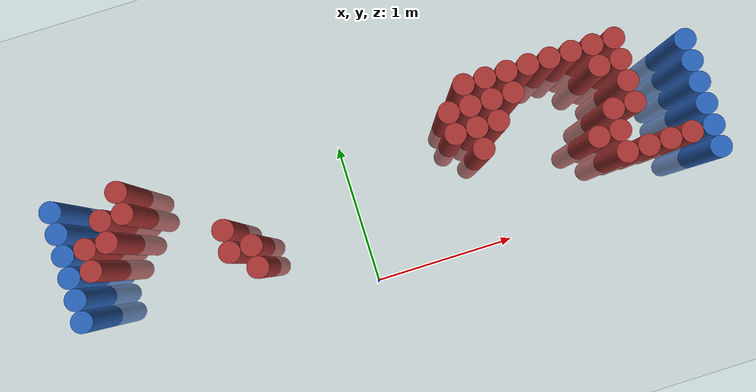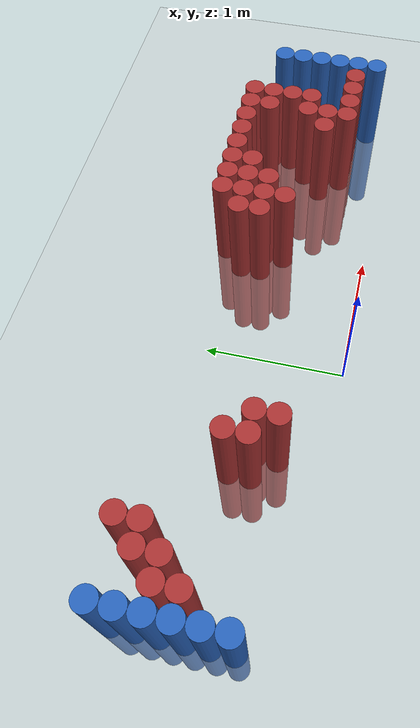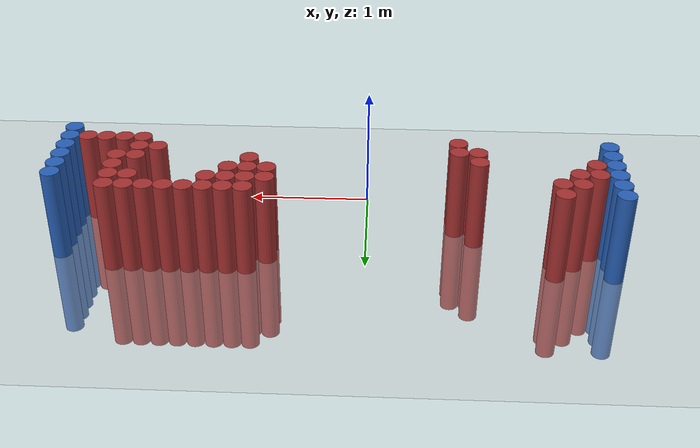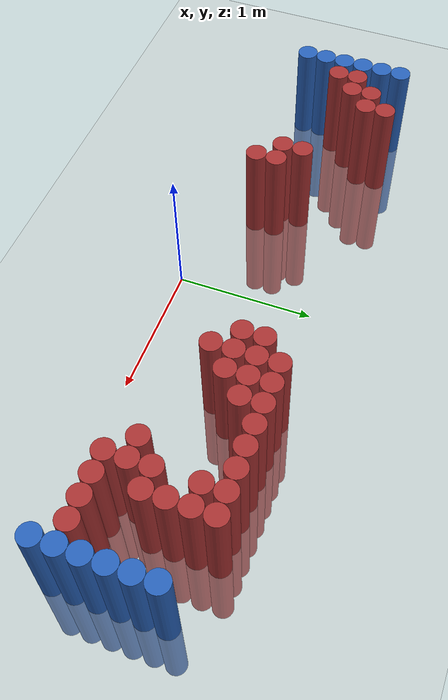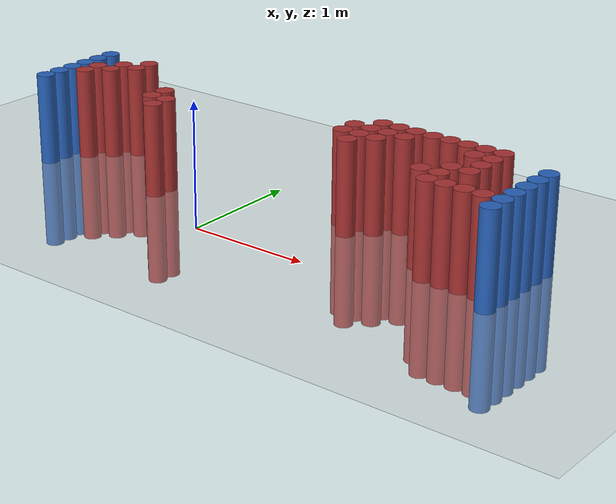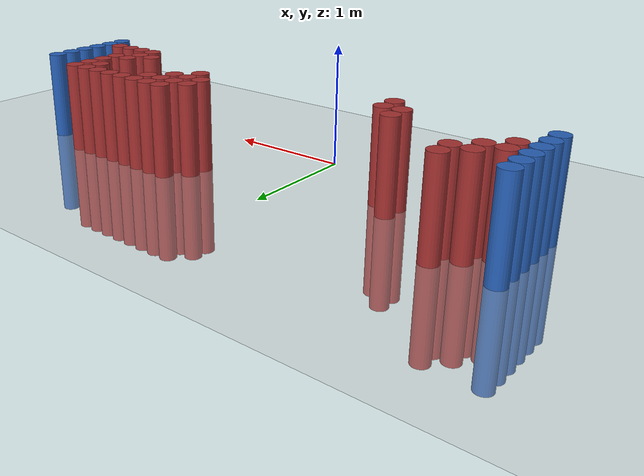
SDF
<sdf version="1.6">
 <world name="default">
  <model name="ground_plane">
   <static>1</static>
   <link name="link">
    <collision name="collision">
     <geometry><plane><normal>0 0 1</normal><size>100 100</size></plane></geometry>
     <surface><friction><ode><mu>100</mu><mu2>50</mu2></ode></friction></surface>
    </collision>
    <visual name="visual">
     <cast_shadows>0</cast_shadows>
     <geometry><plane><normal>0 0 1</normal><size>100 100</size></plane></geometry>
     <material>
      <script><uri>file://media/materials/scripts/gazebo.material</uri><name>Gazebo/Grey</name></script>
     </material>
    </visual>
   </link>
  </model>
  <model name="unit_cylinder_97">
   <static>1</static>
   <pose>-1.925000 0.325000 0.000000 0.000000 0.000000 0.000000</pose>
   <link name="link">
    <inertial>
     <mass>1</mass>
     <inertia><ixx>0.145833</ixx><ixy>0</ixy><ixz>0</ixz><iyy>0.145833</iyy><iyz>0</iyz><izz>0.125</izz></inertia>
    </inertial>
    <collision name="collision">
     <geometry><cylinder><radius>0.075000</radius><length>1.5</length></cylinder></geometry>
    </collision>
    <visual name="visual">
     <geometry><cylinder><radius>0.075000</radius><length>1.5</length></cylinder></geometry>
     <material>
      <ambient>0.152000 0.379000 0.720000 1</ambient>
      <diffuse>0.152000 0.379000 0.720000 1</diffuse>
     </material>
     <material>
      <script><name>Gazebo/Grey</name><uri>file://media/materials/scripts/gazebo.material</uri></script>
     </material>
    </visual>
   </link>
  </model>
  <model name="unit_cylinder_98">
   <static>1</static>
   <pose>-1.925000 0.475000 0.000000 0.000000 0.000000 0.000000</pose>
   <link name="link">
    <inertial>
     <mass>1</mass>
     <inertia><ixx>0.145833</ixx><ixy>0</ixy><ixz>0</ixz><iyy>0.145833</iyy><iyz>0</iyz><izz>0.125</izz></inertia>
    </inertial>
    <collision name="collision">
     <geometry><cylinder><radius>0.075000</radius><length>1.5</length></cylinder></geometry>
    </collision>
    <visual name="visual">
     <geometry><cylinder><radius>0.075000</radius><length>1.5</length></cylinder></geometry>
     <material>
      <ambient>0.152000 0.379000 0.720000 1</ambient>
      <diffuse>0.152000 0.379000 0.720000 1</diffuse>
     </material>
     <material>
      <script><name>Gazebo/Grey</name><uri>file://media/materials/scripts/gazebo.material</uri></script>
     </material>
    </visual>
   </link>
  </model>
  <model name="unit_cylinder_99">
   <static>1</static>
   <pose>-1.925000 0.625000 0.000000 0.000000 0.000000 0.000000</pose>
   <link name="link">
    <inertial>
     <mass>1</mass>
     <inertia><ixx>0.145833</ixx><ixy>0</ixy><ixz>0</ixz><iyy>0.145833</iyy><iyz>0</iyz><izz>0.125</izz></inertia>
    </inertial>
    <collision name="collision">
     <geometry><cylinder><radius>0.075000</radius><length>1.5</length></cylinder></geometry>
    </collision>
    <visual name="visual">
     <geometry><cylinder><radius>0.075000</radius><length>1.5</length></cylinder></geometry>
     <material>
      <ambient>0.152000 0.379000 0.720000 1</ambient>
      <diffuse>0.152000 0.379000 0.720000 1</diffuse>
     </material>
     <material>
      <script><name>Gazebo/Grey</name><uri>file://media/materials/scripts/gazebo.material</uri></script>
     </material>
    </visual>
   </link>
  </model>
  <model name="unit_cylinder_100">
   <static>1</static>
   <pose>-1.925000 0.775000 0.000000 0.000000 0.000000 0.000000</pose>
   <link name="link">
    <inertial>
     <mass>1</mass>
     <inertia><ixx>0.145833</ixx><ixy>0</ixy><ixz>0</ixz><iyy>0.145833</iyy><iyz>0</iyz><izz>0.125</izz></inertia>
    </inertial>
    <collision name="collision">
     <geometry><cylinder><radius>0.075000</radius><length>1.5</length></cylinder></geometry>
    </collision>
    <visual name="visual">
     <geometry><cylinder><radius>0.075000</radius><length>1.5</length></cylinder></geometry>
     <material>
      <ambient>0.152000 0.379000 0.720000 1</ambient>
      <diffuse>0.152000 0.379000 0.720000 1</diffuse>
     </material>
     <material>
      <script><name>Gazebo/Grey</name><uri>file://media/materials/scripts/gazebo.material</uri></script>
     </material>
    </visual>
   </link>
  </model>
  <model name="unit_cylinder_101">
   <static>1</static>
   <pose>-1.925000 0.925000 0.000000 0.000000 0.000000 0.000000</pose>
   <link name="link">
    <inertial>
     <mass>1</mass>
     <inertia><ixx>0.145833</ixx><ixy>0</ixy><ixz>0</ixz><iyy>0.145833</iyy><iyz>0</iyz><izz>0.125</izz></inertia>
    </inertial>
    <collision name="collision">
     <geometry><cylinder><radius>0.075000</radius><length>1.5</length></cylinder></geometry>
    </collision>
    <visual name="visual">
     <geometry><cylinder><radius>0.075000</radius><length>1.5</length></cylinder></geometry>
     <material>
      <ambient>0.152000 0.379000 0.720000 1</ambient>
      <diffuse>0.152000 0.379000 0.720000 1</diffuse>
     </material>
     <material>
      <script><name>Gazebo/Grey</name><uri>file://media/materials/scripts/gazebo.material</uri></script>
     </material>
    </visual>
   </link>
  </model>
  <model name="unit_cylinder_102">
   <static>1</static>
   <pose>-1.925000 1.075000 0.000000 0.000000 0.000000 0.000000</pose>
   <link name="link">
    <inertial>
     <mass>1</mass>
     <inertia><ixx>0.145833</ixx><ixy>0</ixy><ixz>0</ixz><iyy>0.145833</iyy><iyz>0</iyz><izz>0.125</izz></inertia>
    </inertial>
    <collision name="collision">
     <geometry><cylinder><radius>0.075000</radius><length>1.5</length></cylinder></geometry>
    </collision>
    <visual name="visual">
     <geometry><cylinder><radius>0.075000</radius><length>1.5</length></cylinder></geometry>
     <material>
      <ambient>0.152000 0.379000 0.720000 1</ambient>
      <diffuse>0.152000 0.379000 0.720000 1</diffuse>
     </material>
     <material>
      <script><name>Gazebo/Grey</name><uri>file://media/materials/scripts/gazebo.material</uri></script>
     </material>
    </visual>
   </link>
  </model>
  <model name="unit_cylinder_127">
   <static>1</static>
   <pose>-1.775000 0.625000 0.000000 0.000000 0.000000 0.000000</pose>
   <link name="link">
    <inertial>
     <mass>1</mass>
     <inertia><ixx>0.145833</ixx><ixy>0</ixy><ixz>0</ixz><iyy>0.145833</iyy><iyz>0</iyz><izz>0.125</izz></inertia>
    </inertial>
    <collision name="collision">
     <geometry><cylinder><radius>0.075000</radius><length>1.5</length></cylinder></geometry>
    </collision>
    <visual name="visual">
     <geometry><cylinder><radius>0.075000</radius><length>1.5</length></cylinder></geometry>
     <material>
      <ambient>0.648000 0.192000 0.192000 1</ambient>
      <diffuse>0.648000 0.192000 0.192000 1</diffuse>
     </material>
     <material>
      <script><name>Gazebo/Grey</name><uri>file://media/materials/scripts/gazebo.material</uri></script>
     </material>
    </visual>
   </link>
  </model>
  <model name="unit_cylinder_128">
   <static>1</static>
   <pose>-1.775000 0.775000 0.000000 0.000000 0.000000 0.000000</pose>
   <link name="link">
    <inertial>
     <mass>1</mass>
     <inertia><ixx>0.145833</ixx><ixy>0</ixy><ixz>0</ixz><iyy>0.145833</iyy><iyz>0</iyz><izz>0.125</izz></inertia>
    </inertial>
    <collision name="collision">
     <geometry><cylinder><radius>0.075000</radius><length>1.5</length></cylinder></geometry>
    </collision>
    <visual name="visual">
     <geometry><cylinder><radius>0.075000</radius><length>1.5</length></cylinder></geometry>
     <material>
      <ambient>0.648000 0.192000 0.192000 1</ambient>
      <diffuse>0.648000 0.192000 0.192000 1</diffuse>
     </material>
     <material>
      <script><name>Gazebo/Grey</name><uri>file://media/materials/scripts/gazebo.material</uri></script>
     </material>
    </visual>
   </link>
  </model>
  <model name="unit_cylinder_143">
   <static>1</static>
   <pose>-1.625000 0.775000 0.000000 0.000000 0.000000 0.000000</pose>
   <link name="link">
    <inertial>
     <mass>1</mass>
     <inertia><ixx>0.145833</ixx><ixy>0</ixy><ixz>0</ixz><iyy>0.145833</iyy><iyz>0</iyz><izz>0.125</izz></inertia>
    </inertial>
    <collision name="collision">
     <geometry><cylinder><radius>0.075000</radius><length>1.5</length></cylinder></geometry>
    </collision>
    <visual name="visual">
     <geometry><cylinder><radius>0.075000</radius><length>1.5</length></cylinder></geometry>
     <material>
      <ambient>0.648000 0.192000 0.192000 1</ambient>
      <diffuse>0.648000 0.192000 0.192000 1</diffuse>
     </material>
     <material>
      <script><name>Gazebo/Grey</name><uri>file://media/materials/scripts/gazebo.material</uri></script>
     </material>
    </visual>
   </link>
  </model>
  <model name="unit_cylinder_144">
   <static>1</static>
   <pose>-1.625000 0.925000 0.000000 0.000000 0.000000 0.000000</pose>
   <link name="link">
    <inertial>
     <mass>1</mass>
     <inertia><ixx>0.145833</ixx><ixy>0</ixy><ixz>0</ixz><iyy>0.145833</iyy><iyz>0</iyz><izz>0.125</izz></inertia>
    </inertial>
    <collision name="collision">
     <geometry><cylinder><radius>0.075000</radius><length>1.5</length></cylinder></geometry>
    </collision>
    <visual name="visual">
     <geometry><cylinder><radius>0.075000</radius><length>1.5</length></cylinder></geometry>
     <material>
      <ambient>0.648000 0.192000 0.192000 1</ambient>
      <diffuse>0.648000 0.192000 0.192000 1</diffuse>
     </material>
     <material>
      <script><name>Gazebo/Grey</name><uri>file://media/materials/scripts/gazebo.material</uri></script>
     </material>
    </visual>
   </link>
  </model>
  <model name="unit_cylinder_150">
   <static>1</static>
   <pose>-1.475000 0.925000 0.000000 0.000000 0.000000 0.000000</pose>
   <link name="link">
    <inertial>
     <mass>1</mass>
     <inertia><ixx>0.145833</ixx><ixy>0</ixy><ixz>0</ixz><iyy>0.145833</iyy><iyz>0</iyz><izz>0.125</izz></inertia>
    </inertial>
    <collision name="collision">
     <geometry><cylinder><radius>0.075000</radius><length>1.5</length></cylinder></geometry>
    </collision>
    <visual name="visual">
     <geometry><cylinder><radius>0.075000</radius><length>1.5</length></cylinder></geometry>
     <material>
      <ambient>0.648000 0.192000 0.192000 1</ambient>
      <diffuse>0.648000 0.192000 0.192000 1</diffuse>
     </material>
     <material>
      <script><name>Gazebo/Grey</name><uri>file://media/materials/scripts/gazebo.material</uri></script>
     </material>
    </visual>
   </link>
  </model>
  <model name="unit_cylinder_151">
   <static>1</static>
   <pose>-1.475000 1.075000 0.000000 0.000000 0.000000 0.000000</pose>
   <link name="link">
    <inertial>
     <mass>1</mass>
     <inertia><ixx>0.145833</ixx><ixy>0</ixy><ixz>0</ixz><iyy>0.145833</iyy><iyz>0</iyz><izz>0.125</izz></inertia>
    </inertial>
    <collision name="collision">
     <geometry><cylinder><radius>0.075000</radius><length>1.5</length></cylinder></geometry>
    </collision>
    <visual name="visual">
     <geometry><cylinder><radius>0.075000</radius><length>1.5</length></cylinder></geometry>
     <material>
      <ambient>0.648000 0.192000 0.192000 1</ambient>
      <diffuse>0.648000 0.192000 0.192000 1</diffuse>
     </material>
     <material>
      <script><name>Gazebo/Grey</name><uri>file://media/materials/scripts/gazebo.material</uri></script>
     </material>
    </visual>
   </link>
  </model>
  <model name="unit_cylinder_168">
   <static>1</static>
   <pose>-0.875000 0.475000 0.000000 0.000000 0.000000 0.000000</pose>
   <link name="link">
    <inertial>
     <mass>1</mass>
     <inertia><ixx>0.145833</ixx><ixy>0</ixy><ixz>0</ixz><iyy>0.145833</iyy><iyz>0</iyz><izz>0.125</izz></inertia>
    </inertial>
    <collision name="collision">
     <geometry><cylinder><radius>0.075000</radius><length>1.5</length></cylinder></geometry>
    </collision>
    <visual name="visual">
     <geometry><cylinder><radius>0.075000</radius><length>1.5</length></cylinder></geometry>
     <material>
      <ambient>0.648000 0.192000 0.192000 1</ambient>
      <diffuse>0.648000 0.192000 0.192000 1</diffuse>
     </material>
     <material>
      <script><name>Gazebo/Grey</name><uri>file://media/materials/scripts/gazebo.material</uri></script>
     </material>
    </visual>
   </link>
  </model>
  <model name="unit_cylinder_169">
   <static>1</static>
   <pose>-0.875000 0.625000 0.000000 0.000000 0.000000 0.000000</pose>
   <link name="link">
    <inertial>
     <mass>1</mass>
     <inertia><ixx>0.145833</ixx><ixy>0</ixy><ixz>0</ixz><iyy>0.145833</iyy><iyz>0</iyz><izz>0.125</izz></inertia>
    </inertial>
    <collision name="collision">
     <geometry><cylinder><radius>0.075000</radius><length>1.5</length></cylinder></geometry>
    </collision>
    <visual name="visual">
     <geometry><cylinder><radius>0.075000</radius><length>1.5</length></cylinder></geometry>
     <material>
      <ambient>0.648000 0.192000 0.192000 1</ambient>
      <diffuse>0.648000 0.192000 0.192000 1</diffuse>
     </material>
     <material>
      <script><name>Gazebo/Grey</name><uri>file://media/materials/scripts/gazebo.material</uri></script>
     </material>
    </visual>
   </link>
  </model>
  <model name="unit_cylinder_171">
   <static>1</static>
   <pose>-0.725000 0.325000 0.000000 0.000000 0.000000 0.000000</pose>
   <link name="link">
    <inertial>
     <mass>1</mass>
     <inertia><ixx>0.145833</ixx><ixy>0</ixy><ixz>0</ixz><iyy>0.145833</iyy><iyz>0</iyz><izz>0.125</izz></inertia>
    </inertial>
    <collision name="collision">
     <geometry><cylinder><radius>0.075000</radius><length>1.5</length></cylinder></geometry>
    </collision>
    <visual name="visual">
     <geometry><cylinder><radius>0.075000</radius><length>1.5</length></cylinder></geometry>
     <material>
      <ambient>0.648000 0.192000 0.192000 1</ambient>
      <diffuse>0.648000 0.192000 0.192000 1</diffuse>
     </material>
     <material>
      <script><name>Gazebo/Grey</name><uri>file://media/materials/scripts/gazebo.material</uri></script>
     </material>
    </visual>
   </link>
  </model>
  <model name="unit_cylinder_172">
   <static>1</static>
   <pose>-0.725000 0.475000 0.000000 0.000000 0.000000 0.000000</pose>
   <link name="link">
    <inertial>
     <mass>1</mass>
     <inertia><ixx>0.145833</ixx><ixy>0</ixy><ixz>0</ixz><iyy>0.145833</iyy><iyz>0</iyz><izz>0.125</izz></inertia>
    </inertial>
    <collision name="collision">
     <geometry><cylinder><radius>0.075000</radius><length>1.5</length></cylinder></geometry>
    </collision>
    <visual name="visual">
     <geometry><cylinder><radius>0.075000</radius><length>1.5</length></cylinder></geometry>
     <material>
      <ambient>0.648000 0.192000 0.192000 1</ambient>
      <diffuse>0.648000 0.192000 0.192000 1</diffuse>
     </material>
     <material>
      <script><name>Gazebo/Grey</name><uri>file://media/materials/scripts/gazebo.material</uri></script>
     </material>
    </visual>
   </link>
  </model>
  <model name="unit_cylinder_178">
   <static>1</static>
   <pose>0.775000 0.775000 0.000000 0.000000 0.000000 0.000000</pose>
   <link name="link">
    <inertial>
     <mass>1</mass>
     <inertia><ixx>0.145833</ixx><ixy>0</ixy><ixz>0</ixz><iyy>0.145833</iyy><iyz>0</iyz><izz>0.125</izz></inertia>
    </inertial>
    <collision name="collision">
     <geometry><cylinder><radius>0.075000</radius><length>1.5</length></cylinder></geometry>
    </collision>
    <visual name="visual">
     <geometry><cylinder><radius>0.075000</radius><length>1.5</length></cylinder></geometry>
     <material>
      <ambient>0.648000 0.192000 0.192000 1</ambient>
      <diffuse>0.648000 0.192000 0.192000 1</diffuse>
     </material>
     <material>
      <script><name>Gazebo/Grey</name><uri>file://media/materials/scripts/gazebo.material</uri></script>
     </material>
    </visual>
   </link>
  </model>
  <model name="unit_cylinder_179">
   <static>1</static>
   <pose>0.775000 0.925000 0.000000 0.000000 0.000000 0.000000</pose>
   <link name="link">
    <inertial>
     <mass>1</mass>
     <inertia><ixx>0.145833</ixx><ixy>0</ixy><ixz>0</ixz><iyy>0.145833</iyy><iyz>0</iyz><izz>0.125</izz></inertia>
    </inertial>
    <collision name="collision">
     <geometry><cylinder><radius>0.075000</radius><length>1.5</length></cylinder></geometry>
    </collision>
    <visual name="visual">
     <geometry><cylinder><radius>0.075000</radius><length>1.5</length></cylinder></geometry>
     <material>
      <ambient>0.648000 0.192000 0.192000 1</ambient>
      <diffuse>0.648000 0.192000 0.192000 1</diffuse>
     </material>
     <material>
      <script><name>Gazebo/Grey</name><uri>file://media/materials/scripts/gazebo.material</uri></script>
     </material>
    </visual>
   </link>
  </model>
  <model name="unit_cylinder_183">
   <static>1</static>
   <pose>0.925000 0.625000 0.000000 0.000000 0.000000 0.000000</pose>
   <link name="link">
    <inertial>
     <mass>1</mass>
     <inertia><ixx>0.145833</ixx><ixy>0</ixy><ixz>0</ixz><iyy>0.145833</iyy><iyz>0</iyz><izz>0.125</izz></inertia>
    </inertial>
    <collision name="collision">
     <geometry><cylinder><radius>0.075000</radius><length>1.5</length></cylinder></geometry>
    </collision>
    <visual name="visual">
     <geometry><cylinder><radius>0.075000</radius><length>1.5</length></cylinder></geometry>
     <material>
      <ambient>0.648000 0.192000 0.192000 1</ambient>
      <diffuse>0.648000 0.192000 0.192000 1</diffuse>
     </material>
     <material>
      <script><name>Gazebo/Grey</name><uri>file://media/materials/scripts/gazebo.material</uri></script>
     </material>
    </visual>
   </link>
  </model>
  <model name="unit_cylinder_184">
   <static>1</static>
   <pose>0.925000 0.775000 0.000000 0.000000 0.000000 0.000000</pose>
   <link name="link">
    <inertial>
     <mass>1</mass>
     <inertia><ixx>0.145833</ixx><ixy>0</ixy><ixz>0</ixz><iyy>0.145833</iyy><iyz>0</iyz><izz>0.125</izz></inertia>
    </inertial>
    <collision name="collision">
     <geometry><cylinder><radius>0.075000</radius><length>1.5</length></cylinder></geometry>
    </collision>
    <visual name="visual">
     <geometry><cylinder><radius>0.075000</radius><length>1.5</length></cylinder></geometry>
     <material>
      <ambient>0.648000 0.192000 0.192000 1</ambient>
      <diffuse>0.648000 0.192000 0.192000 1</diffuse>
     </material>
     <material>
      <script><name>Gazebo/Grey</name><uri>file://media/materials/scripts/gazebo.material</uri></script>
     </material>
    </visual>
   </link>
  </model>
  <model name="unit_cylinder_185">
   <static>1</static>
   <pose>0.925000 0.925000 0.000000 0.000000 0.000000 0.000000</pose>
   <link name="link">
    <inertial>
     <mass>1</mass>
     <inertia><ixx>0.145833</ixx><ixy>0</ixy><ixz>0</ixz><iyy>0.145833</iyy><iyz>0</iyz><izz>0.125</izz></inertia>
    </inertial>
    <collision name="collision">
     <geometry><cylinder><radius>0.075000</radius><length>1.5</length></cylinder></geometry>
    </collision>
    <visual name="visual">
     <geometry><cylinder><radius>0.075000</radius><length>1.5</length></cylinder></geometry>
     <material>
      <ambient>0.648000 0.192000 0.192000 1</ambient>
      <diffuse>0.648000 0.192000 0.192000 1</diffuse>
     </material>
     <material>
      <script><name>Gazebo/Grey</name><uri>file://media/materials/scripts/gazebo.material</uri></script>
     </material>
    </visual>
   </link>
  </model>
  <model name="unit_cylinder_186">
   <static>1</static>
   <pose>0.925000 1.075000 0.000000 0.000000 0.000000 0.000000</pose>
   <link name="link">
    <inertial>
     <mass>1</mass>
     <inertia><ixx>0.145833</ixx><ixy>0</ixy><ixz>0</ixz><iyy>0.145833</iyy><iyz>0</iyz><izz>0.125</izz></inertia>
    </inertial>
    <collision name="collision">
     <geometry><cylinder><radius>0.075000</radius><length>1.5</length></cylinder></geometry>
    </collision>
    <visual name="visual">
     <geometry><cylinder><radius>0.075000</radius><length>1.5</length></cylinder></geometry>
     <material>
      <ambient>0.648000 0.192000 0.192000 1</ambient>
      <diffuse>0.648000 0.192000 0.192000 1</diffuse>
     </material>
     <material>
      <script><name>Gazebo/Grey</name><uri>file://media/materials/scripts/gazebo.material</uri></script>
     </material>
    </visual>
   </link>
  </model>
  <model name="unit_cylinder_191">
   <static>1</static>
   <pose>1.075000 0.775000 0.000000 0.000000 0.000000 0.000000</pose>
   <link name="link">
    <inertial>
     <mass>1</mass>
     <inertia><ixx>0.145833</ixx><ixy>0</ixy><ixz>0</ixz><iyy>0.145833</iyy><iyz>0</iyz><izz>0.125</izz></inertia>
    </inertial>
    <collision name="collision">
     <geometry><cylinder><radius>0.075000</radius><length>1.5</length></cylinder></geometry>
    </collision>
    <visual name="visual">
     <geometry><cylinder><radius>0.075000</radius><length>1.5</length></cylinder></geometry>
     <material>
      <ambient>0.648000 0.192000 0.192000 1</ambient>
      <diffuse>0.648000 0.192000 0.192000 1</diffuse>
     </material>
     <material>
      <script><name>Gazebo/Grey</name><uri>file://media/materials/scripts/gazebo.material</uri></script>
     </material>
    </visual>
   </link>
  </model>
  <model name="unit_cylinder_192">
   <static>1</static>
   <pose>1.075000 0.925000 0.000000 0.000000 0.000000 0.000000</pose>
   <link name="link">
    <inertial>
     <mass>1</mass>
     <inertia><ixx>0.145833</ixx><ixy>0</ixy><ixz>0</ixz><iyy>0.145833</iyy><iyz>0</iyz><izz>0.125</izz></inertia>
    </inertial>
    <collision name="collision">
     <geometry><cylinder><radius>0.075000</radius><length>1.5</length></cylinder></geometry>
    </collision>
    <visual name="visual">
     <geometry><cylinder><radius>0.075000</radius><length>1.5</length></cylinder></geometry>
     <material>
      <ambient>0.648000 0.192000 0.192000 1</ambient>
      <diffuse>0.648000 0.192000 0.192000 1</diffuse>
     </material>
     <material>
      <script><name>Gazebo/Grey</name><uri>file://media/materials/scripts/gazebo.material</uri></script>
     </material>
    </visual>
   </link>
  </model>
  <model name="unit_cylinder_193">
   <static>1</static>
   <pose>1.075000 1.075000 0.000000 0.000000 0.000000 0.000000</pose>
   <link name="link">
    <inertial>
     <mass>1</mass>
     <inertia><ixx>0.145833</ixx><ixy>0</ixy><ixz>0</ixz><iyy>0.145833</iyy><iyz>0</iyz><izz>0.125</izz></inertia>
    </inertial>
    <collision name="collision">
     <geometry><cylinder><radius>0.075000</radius><length>1.5</length></cylinder></geometry>
    </collision>
    <visual name="visual">
     <geometry><cylinder><radius>0.075000</radius><length>1.5</length></cylinder></geometry>
     <material>
      <ambient>0.648000 0.192000 0.192000 1</ambient>
      <diffuse>0.648000 0.192000 0.192000 1</diffuse>
     </material>
     <material>
      <script><name>Gazebo/Grey</name><uri>file://media/materials/scripts/gazebo.material</uri></script>
     </material>
    </visual>
   </link>
  </model>
  <model name="unit_cylinder_199">
   <static>1</static>
   <pose>1.225000 0.925000 0.000000 0.000000 0.000000 0.000000</pose>
   <link name="link">
    <inertial>
     <mass>1</mass>
     <inertia><ixx>0.145833</ixx><ixy>0</ixy><ixz>0</ixz><iyy>0.145833</iyy><iyz>0</iyz><izz>0.125</izz></inertia>
    </inertial>
    <collision name="collision">
     <geometry><cylinder><radius>0.075000</radius><length>1.5</length></cylinder></geometry>
    </collision>
    <visual name="visual">
     <geometry><cylinder><radius>0.075000</radius><length>1.5</length></cylinder></geometry>
     <material>
      <ambient>0.648000 0.192000 0.192000 1</ambient>
      <diffuse>0.648000 0.192000 0.192000 1</diffuse>
     </material>
     <material>
      <script><name>Gazebo/Grey</name><uri>file://media/materials/scripts/gazebo.material</uri></script>
     </material>
    </visual>
   </link>
  </model>
  <model name="unit_cylinder_200">
   <static>1</static>
   <pose>1.225000 1.075000 0.000000 0.000000 0.000000 0.000000</pose>
   <link name="link">
    <inertial>
     <mass>1</mass>
     <inertia><ixx>0.145833</ixx><ixy>0</ixy><ixz>0</ixz><iyy>0.145833</iyy><iyz>0</iyz><izz>0.125</izz></inertia>
    </inertial>
    <collision name="collision">
     <geometry><cylinder><radius>0.075000</radius><length>1.5</length></cylinder></geometry>
    </collision>
    <visual name="visual">
     <geometry><cylinder><radius>0.075000</radius><length>1.5</length></cylinder></geometry>
     <material>
      <ambient>0.648000 0.192000 0.192000 1</ambient>
      <diffuse>0.648000 0.192000 0.192000 1</diffuse>
     </material>
     <material>
      <script><name>Gazebo/Grey</name><uri>file://media/materials/scripts/gazebo.material</uri></script>
     </material>
    </visual>
   </link>
  </model>
  <model name="unit_cylinder_205">
   <static>1</static>
   <pose>1.375000 1.075000 0.000000 0.000000 0.000000 0.000000</pose>
   <link name="link">
    <inertial>
     <mass>1</mass>
     <inertia><ixx>0.145833</ixx><ixy>0</ixy><ixz>0</ixz><iyy>0.145833</iyy><iyz>0</iyz><izz>0.125</izz></inertia>
    </inertial>
    <collision name="collision">
     <geometry><cylinder><radius>0.075000</radius><length>1.5</length></cylinder></geometry>
    </collision>
    <visual name="visual">
     <geometry><cylinder><radius>0.075000</radius><length>1.5</length></cylinder></geometry>
     <material>
      <ambient>0.648000 0.192000 0.192000 1</ambient>
      <diffuse>0.648000 0.192000 0.192000 1</diffuse>
     </material>
     <material>
      <script><name>Gazebo/Grey</name><uri>file://media/materials/scripts/gazebo.material</uri></script>
     </material>
    </visual>
   </link>
  </model>
  <model name="unit_cylinder_209">
   <static>1</static>
   <pose>1.525000 1.075000 0.000000 0.000000 0.000000 0.000000</pose>
   <link name="link">
    <inertial>
     <mass>1</mass>
     <inertia><ixx>0.145833</ixx><ixy>0</ixy><ixz>0</ixz><iyy>0.145833</iyy><iyz>0</iyz><izz>0.125</izz></inertia>
    </inertial>
    <collision name="collision">
     <geometry><cylinder><radius>0.075000</radius><length>1.5</length></cylinder></geometry>
    </collision>
    <visual name="visual">
     <geometry><cylinder><radius>0.075000</radius><length>1.5</length></cylinder></geometry>
     <material>
      <ambient>0.648000 0.192000 0.192000 1</ambient>
      <diffuse>0.648000 0.192000 0.192000 1</diffuse>
     </material>
     <material>
      <script><name>Gazebo/Grey</name><uri>file://media/materials/scripts/gazebo.material</uri></script>
     </material>
    </visual>
   </link>
  </model>
  <model name="unit_cylinder_216">
   <static>1</static>
   <pose>1.675000 0.475000 0.000000 0.000000 0.000000 0.000000</pose>
   <link name="link">
    <inertial>
     <mass>1</mass>
     <inertia><ixx>0.145833</ixx><ixy>0</ixy><ixz>0</ixz><iyy>0.145833</iyy><iyz>0</iyz><izz>0.125</izz></inertia>
    </inertial>
    <collision name="collision">
     <geometry><cylinder><radius>0.075000</radius><length>1.5</length></cylinder></geometry>
    </collision>
    <visual name="visual">
     <geometry><cylinder><radius>0.075000</radius><length>1.5</length></cylinder></geometry>
     <material>
      <ambient>0.648000 0.192000 0.192000 1</ambient>
      <diffuse>0.648000 0.192000 0.192000 1</diffuse>
     </material>
     <material>
      <script><name>Gazebo/Grey</name><uri>file://media/materials/scripts/gazebo.material</uri></script>
     </material>
    </visual>
   </link>
  </model>
  <model name="unit_cylinder_217">
   <static>1</static>
   <pose>1.675000 1.075000 0.000000 0.000000 0.000000 0.000000</pose>
   <link name="link">
    <inertial>
     <mass>1</mass>
     <inertia><ixx>0.145833</ixx><ixy>0</ixy><ixz>0</ixz><iyy>0.145833</iyy><iyz>0</iyz><izz>0.125</izz></inertia>
    </inertial>
    <collision name="collision">
     <geometry><cylinder><radius>0.075000</radius><length>1.5</length></cylinder></geometry>
    </collision>
    <visual name="visual">
     <geometry><cylinder><radius>0.075000</radius><length>1.5</length></cylinder></geometry>
     <material>
      <ambient>0.648000 0.192000 0.192000 1</ambient>
      <diffuse>0.648000 0.192000 0.192000 1</diffuse>
     </material>
     <material>
      <script><name>Gazebo/Grey</name><uri>file://media/materials/scripts/gazebo.material</uri></script>
     </material>
    </visual>
   </link>
  </model>
  <model name="unit_cylinder_225">
   <static>1</static>
   <pose>1.825000 0.325000 0.000000 0.000000 0.000000 0.000000</pose>
   <link name="link">
    <inertial>
     <mass>1</mass>
     <inertia><ixx>0.145833</ixx><ixy>0</ixy><ixz>0</ixz><iyy>0.145833</iyy><iyz>0</iyz><izz>0.125</izz></inertia>
    </inertial>
    <collision name="collision">
     <geometry><cylinder><radius>0.075000</radius><length>1.5</length></cylinder></geometry>
    </collision>
    <visual name="visual">
     <geometry><cylinder><radius>0.075000</radius><length>1.5</length></cylinder></geometry>
     <material>
      <ambient>0.648000 0.192000 0.192000 1</ambient>
      <diffuse>0.648000 0.192000 0.192000 1</diffuse>
     </material>
     <material>
      <script><name>Gazebo/Grey</name><uri>file://media/materials/scripts/gazebo.material</uri></script>
     </material>
    </visual>
   </link>
  </model>
  <model name="unit_cylinder_226">
   <static>1</static>
   <pose>1.825000 0.475000 0.000000 0.000000 0.000000 0.000000</pose>
   <link name="link">
    <inertial>
     <mass>1</mass>
     <inertia><ixx>0.145833</ixx><ixy>0</ixy><ixz>0</ixz><iyy>0.145833</iyy><iyz>0</iyz><izz>0.125</izz></inertia>
    </inertial>
    <collision name="collision">
     <geometry><cylinder><radius>0.075000</radius><length>1.5</length></cylinder></geometry>
    </collision>
    <visual name="visual">
     <geometry><cylinder><radius>0.075000</radius><length>1.5</length></cylinder></geometry>
     <material>
      <ambient>0.648000 0.192000 0.192000 1</ambient>
      <diffuse>0.648000 0.192000 0.192000 1</diffuse>
     </material>
     <material>
      <script><name>Gazebo/Grey</name><uri>file://media/materials/scripts/gazebo.material</uri></script>
     </material>
    </visual>
   </link>
  </model>
  <model name="unit_cylinder_227">
   <static>1</static>
   <pose>1.825000 0.625000 0.000000 0.000000 0.000000 0.000000</pose>
   <link name="link">
    <inertial>
     <mass>1</mass>
     <inertia><ixx>0.145833</ixx><ixy>0</ixy><ixz>0</ixz><iyy>0.145833</iyy><iyz>0</iyz><izz>0.125</izz></inertia>
    </inertial>
    <collision name="collision">
     <geometry><cylinder><radius>0.075000</radius><length>1.5</length></cylinder></geometry>
    </collision>
    <visual name="visual">
     <geometry><cylinder><radius>0.075000</radius><length>1.5</length></cylinder></geometry>
     <material>
      <ambient>0.648000 0.192000 0.192000 1</ambient>
      <diffuse>0.648000 0.192000 0.192000 1</diffuse>
     </material>
     <material>
      <script><name>Gazebo/Grey</name><uri>file://media/materials/scripts/gazebo.material</uri></script>
     </material>
    </visual>
   </link>
  </model>
  <model name="unit_cylinder_228">
   <static>1</static>
   <pose>1.825000 0.925000 0.000000 0.000000 0.000000 0.000000</pose>
   <link name="link">
    <inertial>
     <mass>1</mass>
     <inertia><ixx>0.145833</ixx><ixy>0</ixy><ixz>0</ixz><iyy>0.145833</iyy><iyz>0</iyz><izz>0.125</izz></inertia>
    </inertial>
    <collision name="collision">
     <geometry><cylinder><radius>0.075000</radius><length>1.5</length></cylinder></geometry>
    </collision>
    <visual name="visual">
     <geometry><cylinder><radius>0.075000</radius><length>1.5</length></cylinder></geometry>
     <material>
      <ambient>0.648000 0.192000 0.192000 1</ambient>
      <diffuse>0.648000 0.192000 0.192000 1</diffuse>
     </material>
     <material>
      <script><name>Gazebo/Grey</name><uri>file://media/materials/scripts/gazebo.material</uri></script>
     </material>
    </visual>
   </link>
  </model>
  <model name="unit_cylinder_229">
   <static>1</static>
   <pose>1.825000 1.075000 0.000000 0.000000 0.000000 0.000000</pose>
   <link name="link">
    <inertial>
     <mass>1</mass>
     <inertia><ixx>0.145833</ixx><ixy>0</ixy><ixz>0</ixz><iyy>0.145833</iyy><iyz>0</iyz><izz>0.125</izz></inertia>
    </inertial>
    <collision name="collision">
     <geometry><cylinder><radius>0.075000</radius><length>1.5</length></cylinder></geometry>
    </collision>
    <visual name="visual">
     <geometry><cylinder><radius>0.075000</radius><length>1.5</length></cylinder></geometry>
     <material>
      <ambient>0.648000 0.192000 0.192000 1</ambient>
      <diffuse>0.648000 0.192000 0.192000 1</diffuse>
     </material>
     <material>
      <script><name>Gazebo/Grey</name><uri>file://media/materials/scripts/gazebo.material</uri></script>
     </material>
    </visual>
   </link>
  </model>
  <model name="unit_cylinder_236">
   <static>1</static>
   <pose>1.975000 0.325000 0.000000 0.000000 0.000000 0.000000</pose>
   <link name="link">
    <inertial>
     <mass>1</mass>
     <inertia><ixx>0.145833</ixx><ixy>0</ixy><ixz>0</ixz><iyy>0.145833</iyy><iyz>0</iyz><izz>0.125</izz></inertia>
    </inertial>
    <collision name="collision">
     <geometry><cylinder><radius>0.075000</radius><length>1.5</length></cylinder></geometry>
    </collision>
    <visual name="visual">
     <geometry><cylinder><radius>0.075000</radius><length>1.5</length></cylinder></geometry>
     <material>
      <ambient>0.648000 0.192000 0.192000 1</ambient>
      <diffuse>0.648000 0.192000 0.192000 1</diffuse>
     </material>
     <material>
      <script><name>Gazebo/Grey</name><uri>file://media/materials/scripts/gazebo.material</uri></script>
     </material>
    </visual>
   </link>
  </model>
  <model name="unit_cylinder_237">
   <static>1</static>
   <pose>1.975000 0.625000 0.000000 0.000000 0.000000 0.000000</pose>
   <link name="link">
    <inertial>
     <mass>1</mass>
     <inertia><ixx>0.145833</ixx><ixy>0</ixy><ixz>0</ixz><iyy>0.145833</iyy><iyz>0</iyz><izz>0.125</izz></inertia>
    </inertial>
    <collision name="collision">
     <geometry><cylinder><radius>0.075000</radius><length>1.5</length></cylinder></geometry>
    </collision>
    <visual name="visual">
     <geometry><cylinder><radius>0.075000</radius><length>1.5</length></cylinder></geometry>
     <material>
      <ambient>0.648000 0.192000 0.192000 1</ambient>
      <diffuse>0.648000 0.192000 0.192000 1</diffuse>
     </material>
     <material>
      <script><name>Gazebo/Grey</name><uri>file://media/materials/scripts/gazebo.material</uri></script>
     </material>
    </visual>
   </link>
  </model>
  <model name="unit_cylinder_238">
   <static>1</static>
   <pose>1.975000 0.775000 0.000000 0.000000 0.000000 0.000000</pose>
   <link name="link">
    <inertial>
     <mass>1</mass>
     <inertia><ixx>0.145833</ixx><ixy>0</ixy><ixz>0</ixz><iyy>0.145833</iyy><iyz>0</iyz><izz>0.125</izz></inertia>
    </inertial>
    <collision name="collision">
     <geometry><cylinder><radius>0.075000</radius><length>1.5</length></cylinder></geometry>
    </collision>
    <visual name="visual">
     <geometry><cylinder><radius>0.075000</radius><length>1.5</length></cylinder></geometry>
     <material>
      <ambient>0.648000 0.192000 0.192000 1</ambient>
      <diffuse>0.648000 0.192000 0.192000 1</diffuse>
     </material>
     <material>
      <script><name>Gazebo/Grey</name><uri>file://media/materials/scripts/gazebo.material</uri></script>
     </material>
    </visual>
   </link>
  </model>
  <model name="unit_cylinder_239">
   <static>1</static>
   <pose>1.975000 0.925000 0.000000 0.000000 0.000000 0.000000</pose>
   <link name="link">
    <inertial>
     <mass>1</mass>
     <inertia><ixx>0.145833</ixx><ixy>0</ixy><ixz>0</ixz><iyy>0.145833</iyy><iyz>0</iyz><izz>0.125</izz></inertia>
    </inertial>
    <collision name="collision">
     <geometry><cylinder><radius>0.075000</radius><length>1.5</length></cylinder></geometry>
    </collision>
    <visual name="visual">
     <geometry><cylinder><radius>0.075000</radius><length>1.5</length></cylinder></geometry>
     <material>
      <ambient>0.648000 0.192000 0.192000 1</ambient>
      <diffuse>0.648000 0.192000 0.192000 1</diffuse>
     </material>
     <material>
      <script><name>Gazebo/Grey</name><uri>file://media/materials/scripts/gazebo.material</uri></script>
     </material>
    </visual>
   </link>
  </model>
  <model name="unit_cylinder_240">
   <static>1</static>
   <pose>1.975000 1.075000 0.000000 0.000000 0.000000 0.000000</pose>
   <link name="link">
    <inertial>
     <mass>1</mass>
     <inertia><ixx>0.145833</ixx><ixy>0</ixy><ixz>0</ixz><iyy>0.145833</iyy><iyz>0</iyz><izz>0.125</izz></inertia>
    </inertial>
    <collision name="collision">
     <geometry><cylinder><radius>0.075000</radius><length>1.5</length></cylinder></geometry>
    </collision>
    <visual name="visual">
     <geometry><cylinder><radius>0.075000</radius><length>1.5</length></cylinder></geometry>
     <material>
      <ambient>0.648000 0.192000 0.192000 1</ambient>
      <diffuse>0.648000 0.192000 0.192000 1</diffuse>
     </material>
     <material>
      <script><name>Gazebo/Grey</name><uri>file://media/materials/scripts/gazebo.material</uri></script>
     </material>
    </visual>
   </link>
  </model>
  <model name="unit_cylinder_247">
   <static>1</static>
   <pose>2.125000 0.325000 0.000000 0.000000 0.000000 0.000000</pose>
   <link name="link">
    <inertial>
     <mass>1</mass>
     <inertia><ixx>0.145833</ixx><ixy>0</ixy><ixz>0</ixz><iyy>0.145833</iyy><iyz>0</iyz><izz>0.125</izz></inertia>
    </inertial>
    <collision name="collision">
     <geometry><cylinder><radius>0.075000</radius><length>1.5</length></cylinder></geometry>
    </collision>
    <visual name="visual">
     <geometry><cylinder><radius>0.075000</radius><length>1.5</length></cylinder></geometry>
     <material>
      <ambient>0.648000 0.192000 0.192000 1</ambient>
      <diffuse>0.648000 0.192000 0.192000 1</diffuse>
     </material>
     <material>
      <script><name>Gazebo/Grey</name><uri>file://media/materials/scripts/gazebo.material</uri></script>
     </material>
    </visual>
   </link>
  </model>
  <model name="unit_cylinder_254">
   <static>1</static>
   <pose>2.275000 0.325000 0.000000 0.000000 0.000000 0.000000</pose>
   <link name="link">
    <inertial>
     <mass>1</mass>
     <inertia><ixx>0.145833</ixx><ixy>0</ixy><ixz>0</ixz><iyy>0.145833</iyy><iyz>0</iyz><izz>0.125</izz></inertia>
    </inertial>
    <collision name="collision">
     <geometry><cylinder><radius>0.075000</radius><length>1.5</length></cylinder></geometry>
    </collision>
    <visual name="visual">
     <geometry><cylinder><radius>0.075000</radius><length>1.5</length></cylinder></geometry>
     <material>
      <ambient>0.648000 0.192000 0.192000 1</ambient>
      <diffuse>0.648000 0.192000 0.192000 1</diffuse>
     </material>
     <material>
      <script><name>Gazebo/Grey</name><uri>file://media/materials/scripts/gazebo.material</uri></script>
     </material>
    </visual>
   </link>
  </model>
  <model name="unit_cylinder_263">
   <static>1</static>
   <pose>2.425000 0.175000 0.000000 0.000000 0.000000 0.000000</pose>
   <link name="link">
    <inertial>
     <mass>1</mass>
     <inertia><ixx>0.145833</ixx><ixy>0</ixy><ixz>0</ixz><iyy>0.145833</iyy><iyz>0</iyz><izz>0.125</izz></inertia>
    </inertial>
    <collision name="collision">
     <geometry><cylinder><radius>0.075000</radius><length>1.5</length></cylinder></geometry>
    </collision>
    <visual name="visual">
     <geometry><cylinder><radius>0.075000</radius><length>1.5</length></cylinder></geometry>
     <material>
      <ambient>0.152000 0.379000 0.720000 1</ambient>
      <diffuse>0.152000 0.379000 0.720000 1</diffuse>
     </material>
     <material>
      <script><name>Gazebo/Grey</name><uri>file://media/materials/scripts/gazebo.material</uri></script>
     </material>
    </visual>
   </link>
  </model>
  <model name="unit_cylinder_264">
   <static>1</static>
   <pose>2.425000 0.325000 0.000000 0.000000 0.000000 0.000000</pose>
   <link name="link">
    <inertial>
     <mass>1</mass>
     <inertia><ixx>0.145833</ixx><ixy>0</ixy><ixz>0</ixz><iyy>0.145833</iyy><iyz>0</iyz><izz>0.125</izz></inertia>
    </inertial>
    <collision name="collision">
     <geometry><cylinder><radius>0.075000</radius><length>1.5</length></cylinder></geometry>
    </collision>
    <visual name="visual">
     <geometry><cylinder><radius>0.075000</radius><length>1.5</length></cylinder></geometry>
     <material>
      <ambient>0.152000 0.379000 0.720000 1</ambient>
      <diffuse>0.152000 0.379000 0.720000 1</diffuse>
     </material>
     <material>
      <script><name>Gazebo/Grey</name><uri>file://media/materials/scripts/gazebo.material</uri></script>
     </material>
    </visual>
   </link>
  </model>
  <model name="unit_cylinder_265">
   <static>1</static>
   <pose>2.425000 0.475000 0.000000 0.000000 0.000000 0.000000</pose>
   <link name="link">
    <inertial>
     <mass>1</mass>
     <inertia><ixx>0.145833</ixx><ixy>0</ixy><ixz>0</ixz><iyy>0.145833</iyy><iyz>0</iyz><izz>0.125</izz></inertia>
    </inertial>
    <collision name="collision">
     <geometry><cylinder><radius>0.075000</radius><length>1.5</length></cylinder></geometry>
    </collision>
    <visual name="visual">
     <geometry><cylinder><radius>0.075000</radius><length>1.5</length></cylinder></geometry>
     <material>
      <ambient>0.152000 0.379000 0.720000 1</ambient>
      <diffuse>0.152000 0.379000 0.720000 1</diffuse>
     </material>
     <material>
      <script><name>Gazebo/Grey</name><uri>file://media/materials/scripts/gazebo.material</uri></script>
     </material>
    </visual>
   </link>
  </model>
  <model name="unit_cylinder_266">
   <static>1</static>
   <pose>2.425000 0.625000 0.000000 0.000000 0.000000 0.000000</pose>
   <link name="link">
    <inertial>
     <mass>1</mass>
     <inertia><ixx>0.145833</ixx><ixy>0</ixy><ixz>0</ixz><iyy>0.145833</iyy><iyz>0</iyz><izz>0.125</izz></inertia>
    </inertial>
    <collision name="collision">
     <geometry><cylinder><radius>0.075000</radius><length>1.5</length></cylinder></geometry>
    </collision>
    <visual name="visual">
     <geometry><cylinder><radius>0.075000</radius><length>1.5</length></cylinder></geometry>
     <material>
      <ambient>0.152000 0.379000 0.720000 1</ambient>
      <diffuse>0.152000 0.379000 0.720000 1</diffuse>
     </material>
     <material>
      <script><name>Gazebo/Grey</name><uri>file://media/materials/scripts/gazebo.material</uri></script>
     </material>
    </visual>
   </link>
  </model>
  <model name="unit_cylinder_267">
   <static>1</static>
   <pose>2.425000 0.775000 0.000000 0.000000 0.000000 0.000000</pose>
   <link name="link">
    <inertial>
     <mass>1</mass>
     <inertia><ixx>0.145833</ixx><ixy>0</ixy><ixz>0</ixz><iyy>0.145833</iyy><iyz>0</iyz><izz>0.125</izz></inertia>
    </inertial>
    <collision name="collision">
     <geometry><cylinder><radius>0.075000</radius><length>1.5</length></cylinder></geometry>
    </collision>
    <visual name="visual">
     <geometry><cylinder><radius>0.075000</radius><length>1.5</length></cylinder></geometry>
     <material>
      <ambient>0.152000 0.379000 0.720000 1</ambient>
      <diffuse>0.152000 0.379000 0.720000 1</diffuse>
     </material>
     <material>
      <script><name>Gazebo/Grey</name><uri>file://media/materials/scripts/gazebo.material</uri></script>
     </material>
    </visual>
   </link>
  </model>
  <model name="unit_cylinder_268">
   <static>1</static>
   <pose>2.425000 0.925000 0.000000 0.000000 0.000000 0.000000</pose>
   <link name="link">
    <inertial>
     <mass>1</mass>
     <inertia><ixx>0.145833</ixx><ixy>0</ixy><ixz>0</ixz><iyy>0.145833</iyy><iyz>0</iyz><izz>0.125</izz></inertia>
    </inertial>
    <collision name="collision">
     <geometry><cylinder><radius>0.075000</radius><length>1.5</length></cylinder></geometry>
    </collision>
    <visual name="visual">
     <geometry><cylinder><radius>0.075000</radius><length>1.5</length></cylinder></geometry>
     <material>
      <ambient>0.152000 0.379000 0.720000 1</ambient>
      <diffuse>0.152000 0.379000 0.720000 1</diffuse>
     </material>
     <material>
      <script><name>Gazebo/Grey</name><uri>file://media/materials/scripts/gazebo.material</uri></script>
     </material>
    </visual>
   </link>
  </model>
 </world>
</sdf>
